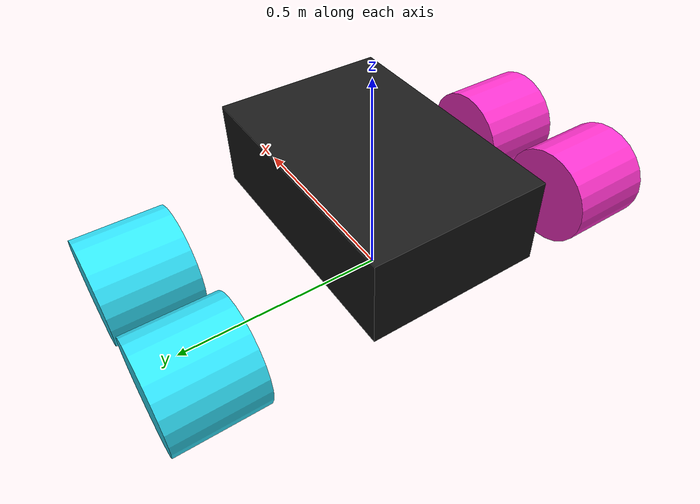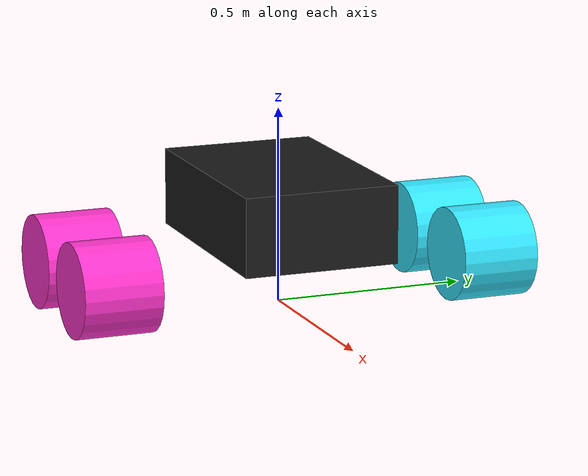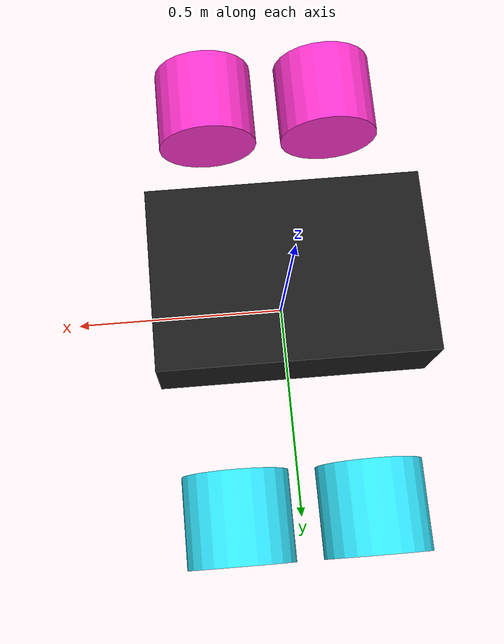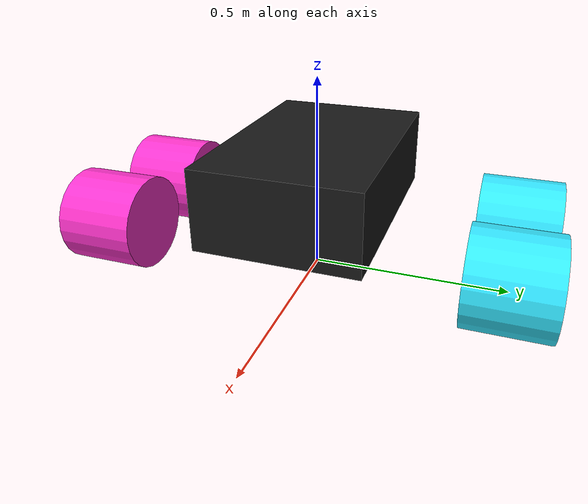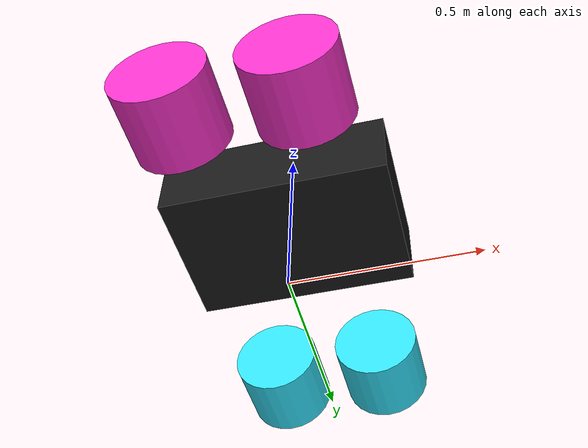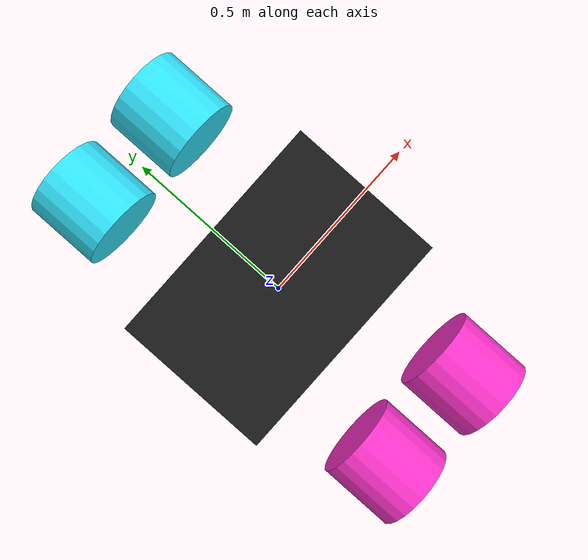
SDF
<?xml version='1.0'?>
<sdf version='1.8'>
  <model name='ball_hitting_robot'>
    <static>false</static>

    <!-- Chassis -->
    <link name='base_link'>
      <pose>0 0 0.25 0 0 0</pose>
      <inertial>
        <mass>20.0</mass>
        <inertia>
          <!-- Approx inertia for a 0.6 x 0.4 x 0.2 box (kg*m^2) -->
          <ixx>0.333</ixx>
          <ixy>0</ixy>
          <ixz>0</ixz>
          <iyy>0.667</iyy>
          <iyz>0</iyz>
          <izz>0.867</izz>
        </inertia>
      </inertial>
      <visual name='base_visual'>
        <geometry>
          <box>
            <size>0.6 0.4 0.2</size>
          </box>
        </geometry>
        <material>
          <ambient>0.1 0.1 0.1 1</ambient>
          <diffuse>0.1 0.1 0.1 1</diffuse>
        </material>
      </visual>
      <collision name='base_collision'>
        <geometry>
          <box>
            <size>0.6 0.4 0.2</size>
          </box>
        </geometry>
        <surface>
          <friction>
            <ode>
              <mu>1.2</mu>
              <mu2>1.0</mu2>
            </ode>
          </friction>
        </surface>
      </collision>
    </link>

    <!-- Rear (driven) wheels -->
    <link name='left_wheel'>
      <!-- Wheels centered at z=0.12 so they sit on ground (radius=0.12) -->
      <pose>-0.15 0.50 0.12 0 0 0</pose>
      <inertial>
        <mass>0.5</mass>
        <inertia>
          <ixx>0.00347</ixx>
          <ixy>0</ixy>
          <ixz>0</ixz>
          <iyy>0.00360</iyy>
          <iyz>0</iyz>
          <izz>0.00347</izz>
        </inertia>
      </inertial>
      <visual name='left_wheel_visual'>
        <pose>0 0 0 1.5707963 0 0</pose>
        <geometry>
          <cylinder>
            <radius>0.12</radius>
            <length>0.20</length>
          </cylinder>
        </geometry>
        <material>
          <ambient>0.2 0.9 1.0 1</ambient>
          <diffuse>0.2 0.9 1.0 1</diffuse>
          <specular>0.2 0.2 0.2 1</specular>
          <emissive>0.1 0.4 0.5 1</emissive>
        </material>
      </visual>
      <collision name='left_wheel_collision'>
        <pose>0 0 0 1.5707963 0 0</pose>
        <geometry>
          <cylinder>
            <radius>0.12</radius>
            <length>0.20</length>
          </cylinder>
        </geometry>
        <surface>
          <friction>
            <ode>
              <mu>1.0</mu>
              <mu2>1.0</mu2>
            </ode>
          </friction>
        </surface>
      </collision>
    </link>

    <link name='right_wheel'>
      <pose>-0.15 -0.50 0.12 0 0 0</pose>
      <inertial>
        <mass>0.5</mass>
        <inertia>
          <ixx>0.00347</ixx>
          <ixy>0</ixy>
          <ixz>0</ixz>
          <iyy>0.00360</iyy>
          <iyz>0</iyz>
          <izz>0.00347</izz>
        </inertia>
      </inertial>
      <visual name='right_wheel_visual'>
        <pose>0 0 0 1.5707963 0 0</pose>
        <geometry>
          <cylinder>
            <radius>0.12</radius>
            <length>0.20</length>
          </cylinder>
        </geometry>
        <material>
          <ambient>1.0 0.2 0.8 1</ambient>
          <diffuse>1.0 0.2 0.8 1</diffuse>
          <specular>0.2 0.2 0.2 1</specular>
          <emissive>0.4 0.1 0.3 1</emissive>
        </material>
      </visual>
      <collision name='right_wheel_collision'>
        <pose>0 0 0 1.5707963 0 0</pose>
        <geometry>
          <cylinder>
            <radius>0.12</radius>
            <length>0.20</length>
          </cylinder>
        </geometry>
        <surface>
          <friction>
            <ode>
              <mu>1.0</mu>
              <mu2>1.0</mu2>
            </ode>
          </friction>
        </surface>
      </collision>
    </link>

    <!-- Front wheels (fixed to rear wheel links to mimic rotation) -->
    <link name='front_left_wheel'>
      <pose>0.15 0.50 0.12 0 0 0</pose>
      <inertial>
        <mass>0.5</mass>
        <inertia>
          <ixx>0.00347</ixx>
          <ixy>0</ixy>
          <ixz>0</ixz>
          <iyy>0.00360</iyy>
          <iyz>0</iyz>
          <izz>0.00347</izz>
        </inertia>
      </inertial>
      <visual name='front_left_wheel_visual'>
        <pose>0 0 0 1.5707963 0 0</pose>
        <geometry>
          <cylinder>
            <radius>0.12</radius>
            <length>0.20</length>
          </cylinder>
        </geometry>
        <material>
          <ambient>0.2 0.9 1.0 1</ambient>
          <diffuse>0.2 0.9 1.0 1</diffuse>
          <specular>0.2 0.2 0.2 1</specular>
          <emissive>0.1 0.4 0.5 1</emissive>
        </material>
      </visual>
      <collision name='front_left_wheel_collision'>
        <pose>0 0 0 1.5707963 0 0</pose>
        <geometry>
          <cylinder>
            <radius>0.12</radius>
            <length>0.20</length>
          </cylinder>
        </geometry>
        <surface>
          <friction>
            <ode>
              <mu>1.0</mu>
              <mu2>1.0</mu2>
            </ode>
          </friction>
        </surface>
      </collision>
    </link>

    <link name='front_right_wheel'>
      <pose>0.15 -0.50 0.12 0 0 0</pose>
      <inertial>
        <mass>0.5</mass>
        <inertia>
          <ixx>0.00347</ixx>
          <ixy>0</ixy>
          <ixz>0</ixz>
          <iyy>0.00360</iyy>
          <iyz>0</iyz>
          <izz>0.00347</izz>
        </inertia>
      </inertial>
      <visual name='front_right_wheel_visual'>
        <pose>0 0 0 1.5707963 0 0</pose>
        <geometry>
          <cylinder>
            <radius>0.12</radius>
            <length>0.20</length>
          </cylinder>
        </geometry>
        <material>
          <ambient>1.0 0.2 0.8 1</ambient>
          <diffuse>1.0 0.2 0.8 1</diffuse>
          <specular>0.2 0.2 0.2 1</specular>
          <emissive>0.4 0.1 0.3 1</emissive>
        </material>
      </visual>
      <collision name='front_right_wheel_collision'>
        <pose>0 0 0 1.5707963 0 0</pose>
        <geometry>
          <cylinder>
            <radius>0.12</radius>
            <length>0.20</length>
          </cylinder>
        </geometry>
        <surface>
          <friction>
            <ode>
              <mu>1.0</mu>
              <mu2>1.0</mu2>
            </ode>
          </friction>
        </surface>
      </collision>
    </link>

    <!-- Camera link -->
    <link name='camera_link'>
      <pose>0.3 0 0.35 0 0 0</pose>
      <inertial>
        <mass>0.2</mass>
        <inertia>
          <ixx>0.0001</ixx>
          <ixy>0</ixy>
          <ixz>0</ixz>
          <iyy>0.0001</iyy>
          <iyz>0</iyz>
          <izz>0.0001</izz>
        </inertia>
      </inertial>
      <sensor name='camera_sensor' type='camera'>
        <always_on>1</always_on>
        <update_rate>30</update_rate>
        <camera>
          <horizontal_fov>1.3962634</horizontal_fov>
          <image>
            <width>640</width>
            <height>480</height>
            <format>R8G8B8</format>
          </image>
          <clip>
            <near>0.1</near>
            <far>100</far>
          </clip>
        </camera>
        <!-- Publish camera image on /camera/image_raw to match ROS bridge -->
        <topic>/camera/image_raw</topic>
      </sensor>
    </link>

    <!-- Joints -->
    <joint name='left_wheel_joint' type='revolute'>
      <parent>base_link</parent>
      <child>left_wheel</child>
      <pose>0 0 0 0 0 0</pose>
      <axis>
        <xyz>0 1 0</xyz>
        <limit>
          <lower>-1e16</lower>
          <upper>1e16</upper>
        </limit>
        <dynamics>
          <damping>0.1</damping>
        </dynamics>
      </axis>
    </joint>

    <joint name='right_wheel_joint' type='revolute'>
      <parent>base_link</parent>
      <child>right_wheel</child>
      <pose>0 0 0 0 0 0</pose>
      <axis>
        <xyz>0 1 0</xyz>
        <limit>
          <lower>-1e16</lower>
          <upper>1e16</upper>
        </limit>
        <dynamics>
          <damping>0.1</damping>
        </dynamics>
      </axis>
    </joint>

    <!-- Fixed joints to mimic/couple front wheels to the driven rear links -->
    <joint name='front_left_wheel_fixed' type='fixed'>
      <parent>left_wheel</parent>
      <child>front_left_wheel</child>
    </joint>

    <joint name='front_right_wheel_fixed' type='fixed'>
      <parent>right_wheel</parent>
      <child>front_right_wheel</child>
    </joint>

    <joint name='camera_fixed' type='fixed'>
      <parent>base_link</parent>
      <child>camera_link</child>
    </joint>

  <!-- Ignition/Gazebo diff-drive system plugin (Gazebo 6) -->
  <plugin name='ignition::gazebo::systems::DiffDrive' filename='libignition-gazebo6-diff-drive-system.so'>
      <left_joint>left_wheel_joint</left_joint>
      <right_joint>right_wheel_joint</right_joint>
      <wheel_separation>1.0</wheel_separation>
      <wheel_radius>0.12</wheel_radius>
      <odom_topic>/odom</odom_topic>
      <odom_frame>odom</odom_frame>
      <base_frame>base_link</base_frame>
    </plugin>

  <!-- Ensure sensors (camera) are processed by Gazebo -->
  <plugin name='ignition::gazebo::systems::Sensors' filename='libignition-gazebo6-sensors-system.so'/>

  </model>
</sdf>
